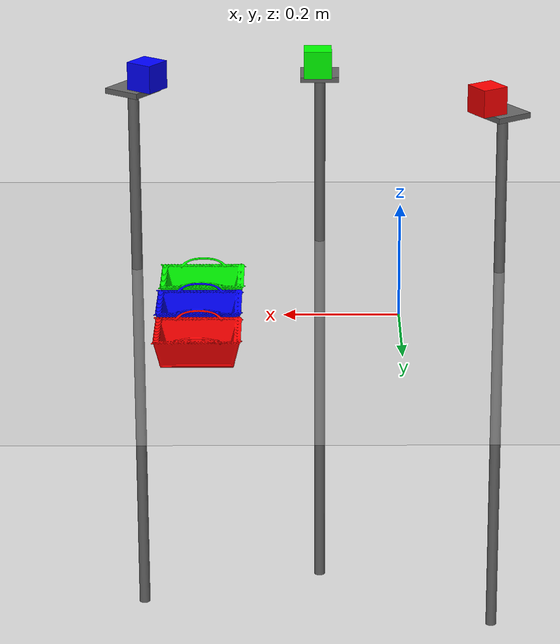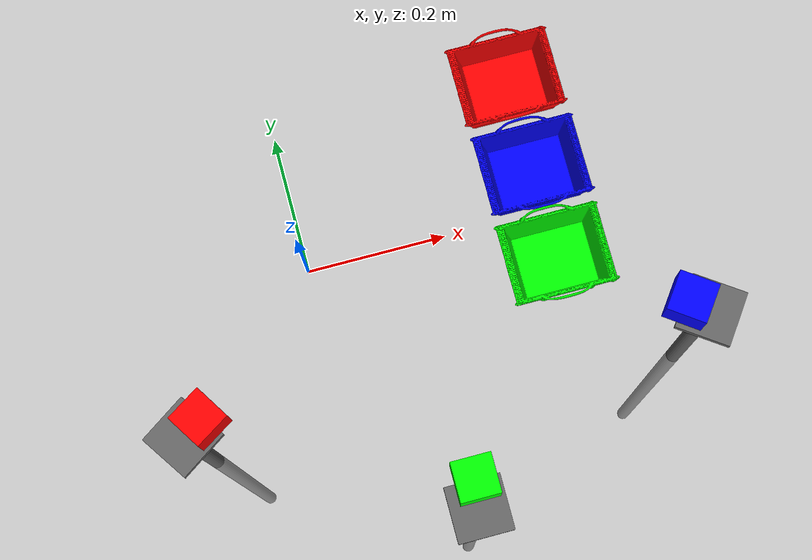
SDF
<sdf version='1.9'>
  <world name='empty'>
    <physics name='1ms' type='ignored'>
      <max_step_size>0.001</max_step_size>
      <real_time_factor>1</real_time_factor>
      <real_time_update_rate>1000</real_time_update_rate>
    </physics>

    <plugin name='gz::sim::systems::Physics' filename='ignition-gazebo-physics-system' />
    <plugin name='gz::sim::systems::UserCommands' filename='ignition-gazebo-user-commands-system' />
    <plugin name='gz::sim::systems::SceneBroadcaster'
      filename='ignition-gazebo-scene-broadcaster-system' />
    <plugin name='gz::sim::systems::Contact' filename='ignition-gazebo-contact-system' />
    <plugin name='gz::sim::systems::Sensors' filename='ignition-gazebo-sensors-system'>
      <render_engine>ogre2</render_engine>
    </plugin>

    <gravity>0 0 -9.8</gravity>

    <magnetic_field>6e-06 2.3e-05 -4.2e-05</magnetic_field>

    <atmosphere type='adiabatic' />
    <scene>
      <ambient>0.4 0.4 0.4 1</ambient>
      <background>0.7 0.7 0.7 1</background>
      <shadows>true</shadows>
    </scene>

    <model name='ground_plane'>
      <static>true</static>
      <link name='link'>
        <collision name='collision'>
          <geometry>
            <plane>
              <normal>0 0 1</normal>
              <size>10 10</size>
            </plane>
          </geometry>
          <surface>
            <friction>
              <ode />
            </friction>
            <bounce />
            <contact />
          </surface>
        </collision>
        <visual name='visual'>
          <geometry>
            <plane>
              <normal>0 0 1</normal>
              <size>10 10</size>
            </plane>
          </geometry>
          <material>
            <ambient>0.8 0.8 0.8 1</ambient>
            <diffuse>0.8 0.8 0.8 1</diffuse>
            <specular>0.8 0.8 0.8 1</specular>
          </material>
        </visual>
        <pose>0 0 0 0 0 0</pose>
        <inertial>
          <pose>0 0 0 0 -0 0</pose>
          <mass>1</mass>
          <inertia>
            <ixx>1</ixx>
            <ixy>0</ixy>
            <ixz>0</ixz>
            <iyy>1</iyy>
            <iyz>0</iyz>
            <izz>1</izz>
          </inertia>
        </inertial>
        <enable_wind>false</enable_wind>
      </link>
      <pose>0 0 0 0 0 0</pose>
      <self_collide>false</self_collide>
    </model>

    <!-- RGB-D Camera for vision-based manipulation -->
    <model name="camera">
      <static>true</static>
      <pose>0.1880 -0.15 1.01 0 1.57 1.57</pose>
      <link name="link">
        <!-- RGB Camera -->
        <sensor name="camera_sensor" type="camera">
          <camera>
            <horizontal_fov>1.047</horizontal_fov>
            <image>
              <width>640</width>
              <height>480</height>
              <format>R8G8B8</format>
            </image>
            <clip>
              <near>0.1</near>
              <far>100</far>
            </clip>
          </camera>
          <always_on>1</always_on>
          <update_rate>30</update_rate>
          <visualize>true</visualize>
          <topic>camera/image_raw</topic>
        </sensor>

        <!-- Depth Camera -->
        <sensor name="depth_camera_sensor" type="depth_camera">
          <camera>
            <horizontal_fov>1.047</horizontal_fov>
            <image>
              <width>640</width>
              <height>480</height>
              <format>R_FLOAT32</format>
            </image>
            <clip>
              <near>0.1</near>
              <far>10.0</far>
            </clip>
          </camera>
          <always_on>1</always_on>
          <update_rate>30</update_rate>
          <visualize>false</visualize>
          <topic>camera/depth</topic>
        </sensor>
      </link>
    </model>

    <!-- Table 2 - middle -->
    <model name="pillar_table-1">
      <static>true</static>
      <pose>0.1351 -0.4045 -0.6886 0 0 0</pose>
      <link name="link">
        <collision name="stand_collision">
          <pose>0 0 0.5 0 0 0</pose>
          <geometry>
            <cylinder>
              <radius>0.01</radius>
              <length>1</length>
            </cylinder>
          </geometry>
        </collision>
        <visual name="stand_visual">
          <pose>0 0 0.5 0 0 0</pose>
          <geometry>
            <cylinder>
              <radius>0.01</radius>
              <length>1</length>
            </cylinder>
          </geometry>
          <material>
            <ambient>0.3 0.3 0.3 1</ambient>
            <diffuse>0.4 0.4 0.4 1</diffuse>
          </material>
        </visual>
        <collision name="plate_collision">
          <pose>0 0 1.005 0 0 0</pose>
          <geometry>
            <box>
              <size>0.07 0.07 0.01</size>
            </box>
          </geometry>
        </collision>
        <visual name="plate_visual">
          <pose>0 0 1.005 0 0 0</pose>
          <geometry>
            <box>
              <size>0.07 0.07 0.01</size>
            </box>
          </geometry>
          <material>
            <ambient>0.3 0.3 0.3 1</ambient>
            <diffuse>0.4 0.4 0.4 1</diffuse>
          </material>
        </visual>
      </link>
    </model>

    <!-- Table 3 (Cyan) - Right -->
    <model name="pillar_table-2">
      <static>true</static>
      <pose>0.4673 -0.2480 -0.6703 0 0 -0.6123</pose>
      <link name="link">
        <collision name="stand_collision">
          <pose>0 0 0.5 0 0 0</pose>
          <geometry>
            <cylinder>
              <radius>0.01</radius>
              <length>1</length>
            </cylinder>
          </geometry>
        </collision>
        <visual name="stand_visual">
          <pose>0 0 0.5 0 0 0</pose>
          <geometry>
            <cylinder>
              <radius>0.01</radius>
              <length>1</length>
            </cylinder>
          </geometry>
          <material>
            <ambient>0.3 0.3 0.3 1</ambient>
            <diffuse>0.4 0.4 0.4 1</diffuse>
          </material>
        </visual>
        <collision name="plate_collision">
          <pose>0 0 1.005 0 0 0</pose>
          <geometry>
            <box>
              <size>0.07 0.07 0.01</size>
            </box>
          </geometry>
        </collision>
        <visual name="plate_visual">
          <pose>0 0 1.005 0 0 0</pose>
          <geometry>
            <box>
              <size>0.07 0.07 0.01</size>
            </box>
          </geometry>
          <material>
            <ambient>0.3 0.3 0.3 1</ambient>
            <diffuse>0.4 0.4 0.4 1</diffuse>
          </material>
        </visual>
      </link>
    </model>

    <!-- Table 1 - Left -->
    <model name="pillar_table-3">
      <static>true</static>
      <pose>-0.1886 -0.2271 -0.7102 0 0 -0.9765</pose>
      <link name="link">
        <collision name="stand_collision">
          <pose>0 0 0.5 0 0 0</pose>
          <geometry>
            <cylinder>
              <radius>0.01</radius>
              <length>1</length>
            </cylinder>
          </geometry>
        </collision>
        <visual name="stand_visual">
          <pose>0 0 0.5 0 0 0</pose>
          <geometry>
            <cylinder>
              <radius>0.01</radius>
              <length>1</length>
            </cylinder>
          </geometry>
          <material>
            <ambient>0.3 0.3 0.3 1</ambient>
            <diffuse>0.4 0.4 0.4 1</diffuse>
          </material>
        </visual>
        <collision name="plate_collision">
          <pose>0 0 1.005 0 0 0</pose>
          <geometry>
            <box>
              <size>0.07 0.07 0.01</size>
            </box>
          </geometry>
        </collision>
        <visual name="plate_visual">
          <pose>0 0 1.005 0 0 0</pose>
          <geometry>
            <box>
              <size>0.07 0.07 0.01</size>
            </box>
          </geometry>
          <material>
            <ambient>0.3 0.3 0.3 1</ambient>
            <diffuse>0.4 0.4 0.4 1</diffuse>
          </material>
        </visual>
      </link>
    </model>

    <!-- Colored Baskets for collecting objects -->
    <include>
      <uri>model://basket_red</uri>
      <name>basket_red</name>
      <pose>0.3500 0.1959 0.0 0 0 0</pose>
    </include>

    <include>
      <uri>model://basket_green</uri>
      <name>basket_green</name>
      <pose>0.3500 -0.0718 0.0 0 0 0</pose>
    </include>

    <include>
      <uri>model://basket_blue</uri>
      <name>basket_blue</name>
      <pose>0.3518 0.0611 0.0 0 0 0</pose>
    </include>

    <!-- Colored Boxes on table -->
    <model name="red_box">
      <static>false</static>
      <pose>-0.1601 -0.2155 0.3248 -1.5708 0 0.5671</pose>
      <link name="red_link">
        <collision name="red_collision">
          <geometry>
            <box>
              <size>0.05 0.05 0.05</size>
            </box>
          </geometry>
          <surface>
            <friction>
              <ode>
                <mu>100.0</mu>
                <mu2>100.0</mu2>
              </ode>
            </friction>
            <contact>
              <ode>
                <kp>1000000.0</kp>
                <kd>1.0</kd>
                <max_vel>0.0</max_vel>
                <min_depth>0.001</min_depth>
              </ode>
            </contact>
          </surface>
        </collision>
        <visual name="red_visual">
          <geometry>
            <box>
              <size>0.05 0.05 0.05</size>
            </box>
          </geometry>
          <material>
            <ambient>1 0 0 1</ambient>
            <diffuse>1 0 0 1</diffuse>
          </material>
        </visual>
        <inertial>
          <mass>0.1</mass>
          <inertia>
            <ixx>0.000058</ixx>
            <iyy>0.000058</iyy>
            <izz>0.000020</izz>
          </inertia>
        </inertial>
        <sensor name="red_box_contact" type="contact">
          <always_on>1</always_on>
          <update_rate>100</update_rate>
          <contact>
            <collision>red_collision</collision>
          </contact>
          <visualize>0</visualize>
          <topic>/red_box/contacts</topic>
        </sensor>
      </link>
    </model>

    <model name="green_box">
      <static>false</static>
      <pose>0.1388 -0.3719 0.3497 0 0 0</pose>
      <link name="green_link">
        <collision name="green_collision">
          <geometry>
            <box>
              <size>0.05 0.05 0.05</size>
            </box>
          </geometry>
          <surface>
            <friction>
              <ode>
                <mu>100.0</mu>
                <mu2>100.0</mu2>
              </ode>
            </friction>
            <contact>
              <ode>
                <kp>1000000.0</kp>
                <kd>1.0</kd>
                <max_vel>0.0</max_vel>
                <min_depth>0.001</min_depth>
              </ode>
            </contact>
          </surface>
        </collision>
        <visual name="green_visual">
          <geometry>
            <box>
              <size>0.05 0.05 0.05</size>
            </box>
          </geometry>
          <material>
            <ambient>0 1 0 1</ambient>
            <diffuse>0 1 0 1</diffuse>
          </material>
        </visual>
        <inertial>
          <mass>0.1</mass>
          <inertia>
            <ixx>0.000058</ixx>
            <iyy>0.000058</iyy>
            <izz>0.000020</izz>
          </inertia>
        </inertial>
      </link>
    </model>

    <model name="blue_box">
      <static>false</static>
      <pose>0.4413 -0.2343 0.3647 0 0 0.9485</pose>
      <link name="blue_link">
        <collision name="blue_collision">
          <geometry>
            <box>
              <size>0.05 0.05 0.05</size>
            </box>
          </geometry>
          <surface>
            <friction>
              <ode>
                <mu>100.0</mu>
                <mu2>100.0</mu2>
              </ode>
            </friction>
            <contact>
              <ode>
                <kp>1000000.0</kp>
                <kd>1.0</kd>
                <max_vel>0.0</max_vel>
                <min_depth>0.001</min_depth>
              </ode>
            </contact>
          </surface>
        </collision>
        <visual name="blue_visual">
          <geometry>
            <box>
              <size>0.05 0.05 0.05</size>
            </box>
          </geometry>
          <material>
            <ambient>0 0 1 1</ambient>
            <diffuse>0 0 1 1</diffuse>
          </material>
        </visual>
        <inertial>
          <mass>0.1</mass>
          <inertia>
            <ixx>0.000058</ixx>
            <iyy>0.000058</iyy>
            <izz>0.000020</izz>
          </inertia>
        </inertial>
      </link>
    </model>

    <light name='sun' type='directional'>
      <pose>0 0 10 0 -0 0</pose>
      <cast_shadows>true</cast_shadows>
      <intensity>1</intensity>
      <direction>-0.5 0.1 -0.9</direction>
      <diffuse>0.8 0.8 0.8 1</diffuse>
      <specular>0.2 0.2 0.2 1</specular>
      <attenuation>
        <range>1000</range>
        <linear>0.01</linear>
        <constant>0.90000000000000002</constant>
        <quadratic>0.001</quadratic>
      </attenuation>
      <spot>
        <inner_angle>0</inner_angle>
        <outer_angle>0</outer_angle>
        <falloff>0</falloff>
      </spot>
    </light>

  </world>
</sdf>

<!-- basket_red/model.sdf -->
<sdf version="1.6">
  <model name="basket_red">
    <static>true</static>
    <link name="link">
      <collision name="collision">
        <geometry>
          <mesh>
            <uri>model://basket_red/meshes/basket.obj</uri>
            <scale>0.003 0.0015 0.0015</scale>
          </mesh>
        </geometry>
      </collision>
      <visual name="visual">
        <geometry>
          <mesh>
            <uri>model://basket_red/meshes/basket.obj</uri>
            <scale>0.003 0.0015 0.0015</scale>
          </mesh>
        </geometry>
        <material>
          <ambient>1.0 0.0 0.0 1</ambient>
          <diffuse>1.0 0.0 0.0 1</diffuse>
          <specular>0.2 0.2 0.2 1</specular>
        </material>
      </visual>
    </link>
  </model>
</sdf>

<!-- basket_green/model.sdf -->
<sdf version="1.6">
  <model name="basket_green">
    <static>true</static>
    <link name="link">
      <collision name="collision">
        <geometry>
          <mesh>
            <uri>model://basket_green/meshes/basket.obj</uri>
            <scale>0.003 0.0015 0.0015</scale>
          </mesh>
        </geometry>
      </collision>
      <visual name="visual">
        <geometry>
          <mesh>
            <uri>model://basket_green/meshes/basket.obj</uri>
            <scale>0.003 0.0015 0.0015</scale>
          </mesh>
        </geometry>
        <material>
          <ambient>0.0 1.0 0.0 1</ambient>
          <diffuse>0.0 1.0 0.0 1</diffuse>
          <specular>0.2 0.2 0.2 1</specular>
        </material>
      </visual>
    </link>
  </model>
</sdf>

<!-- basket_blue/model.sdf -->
<sdf version="1.6">
  <model name="basket_blue">
    <static>true</static>
    <link name="link">
      <collision name="collision">
        <geometry>
          <mesh>
            <uri>model://basket_blue/meshes/basket.obj</uri>
            <scale>0.003 0.0015 0.0015</scale>
          </mesh>
        </geometry>
      </collision>
      <visual name="visual">
        <geometry>
          <mesh>
            <uri>model://basket_blue/meshes/basket.obj</uri>
            <scale>0.003 0.0015 0.0015</scale>
          </mesh>
        </geometry>
        <material>
          <ambient>0.0 0.0 1.0 1</ambient>
          <diffuse>0.0 0.0 1.0 1</diffuse>
          <specular>0.2 0.2 0.2 1</specular>
        </material>
      </visual>
    </link>
  </model>
</sdf>
